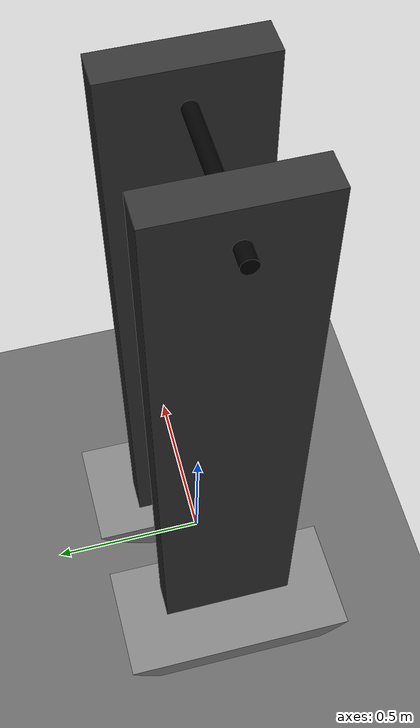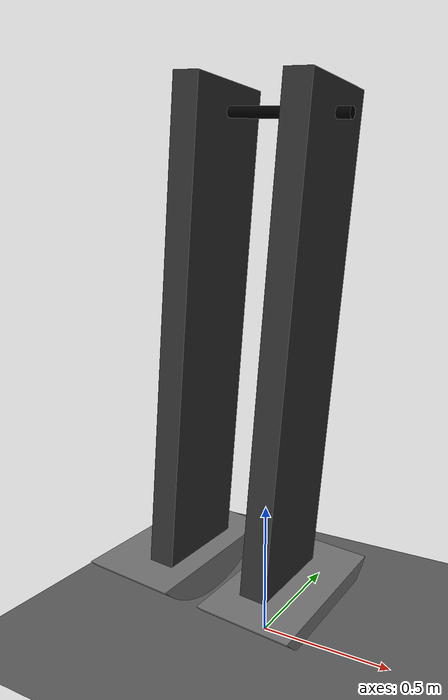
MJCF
<!-- TODO -->
<!-- (1) correct mass/inertial matricies (just weight for now) -->
<mujoco model="passive_walker">
  <compiler angle="degree" coordinate="local" meshdir="meshes"/>
  <size nconmax="100" njmax="500"/>
  <option integrator="RK4" timestep="0.01"/>
  <asset>
    <texture builtin="gradient" height="100" name="a" rgb1="1 1 1" rgb2="0 0 0" type="skybox" width="100"/>
    <texture builtin="checker" height="50" mark="cross" markrgb=".8 .8 .8" name="texplane0" rgb1="0 0 0" rgb2="0.8 0.8 0.8" type="2d" width="50"/>
    <material name="matplane0" reflectance="0.3" texrepeat="4 4" texture="texplane0" texuniform="true"/>
    <mesh file="foot_left.stl" name="foot_left"/>
    <mesh file="foot_right.stl" name="foot_right"/>
  </asset>
  <visual>
    <headlight ambient="0.6 0.6 0.6" diffuse="0.5 0.5 0.5" specular="0.2 0.2 0.2"/>
    <map znear="0.001"/>
  </visual>
  <worldbody>
    <geom euler="3 0 0" material="matplane0" name="floor" pos="0 0 0" size="0 0 0.01" type="plane"/>
    <body euler="0 5 0" name="Hip" pos="0.0 0.0 1.9">
      <joint name="free" type="free"/>
      <geom euler="0 90 0" mass="0.1" name="center" rgba="0 0 0 1" size="0.02 0.3" type="cylinder"/>
      <body euler="0 0 0" name="LeftLeg" pos="0 0.0 0">
        <joint axis="1 0 0" name="HipLeftJoint" pos="0 0 0" type="hinge"/>
        <geom mass="2" name="LeftLegGeom" pos="-0.2 0 -0.8" rgba="0.2 0.2 0.2 1" size="0.05 0.2 0.9" type="box"/>
        <body euler="0 0 0" pos="0 0.0 -1.8">
          <geom euler="0 0 0" mass="2" mesh="foot_left" name="left_foot" pos="0 0.35 0" type="mesh"/>
          <body pos="0 0 0">
            <geom mass="5" name="left_weight" pos="-0.2 0 0.1" size="0.01" type="sphere" rgba="1 0 0 1"/>
          </body>
        </body>
      </body>
      <body euler="0 0 0" name="RightLeg" pos="0.0 0.0 0.0">
        <joint axis="1 0 0" name="HipRightJoint" pos="0 0 0" type="hinge"/>
        <geom mass="2" name="RightLegGeom" pos="0.2 0 -0.8" rgba="0.2 0.2 0.2 1" size="0.05 0.2 0.9" type="box"/>
        <body euler="0 0 0" pos="0 0 -1.8">
          <geom euler="0 0 0" mass="2" mesh="foot_right" name="right_foot" pos="0 0.35 0" type="mesh"/>
          <body pos="0 0 0">
            <geom mass="5" name="right_weight" pos="0.2 0 .1" size="0.01" type="sphere" rgba="1 0 0 1"/>
          </body>
        </body>
      </body>
    </body>
  </worldbody>
</mujoco>
